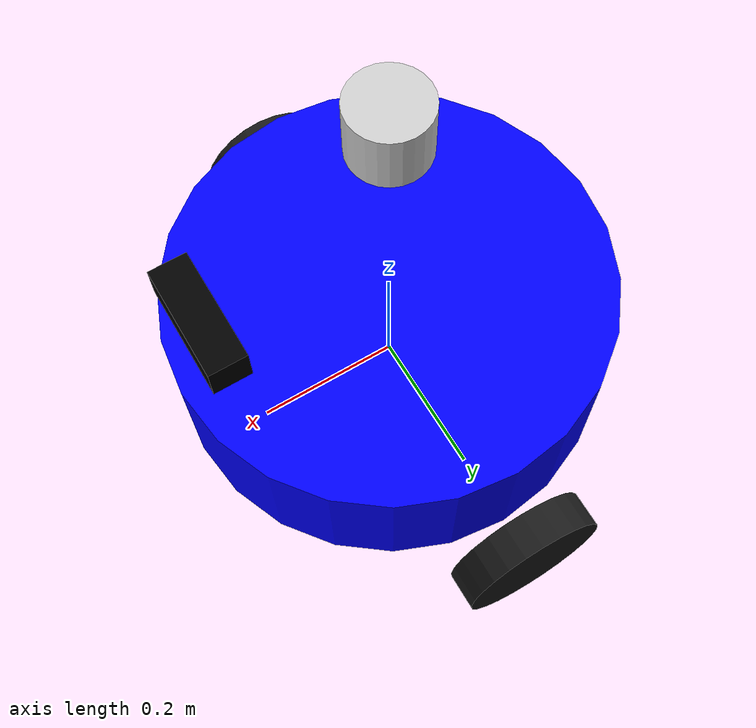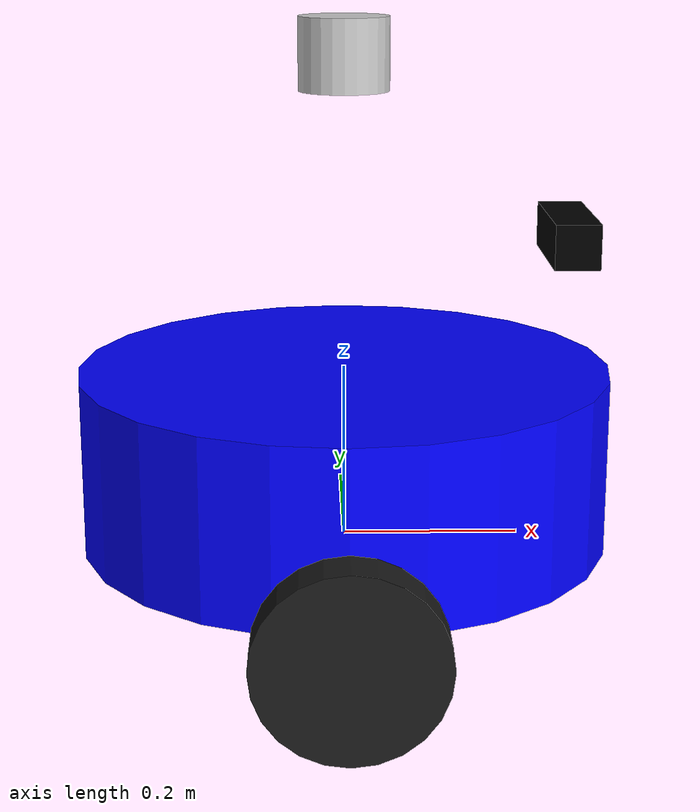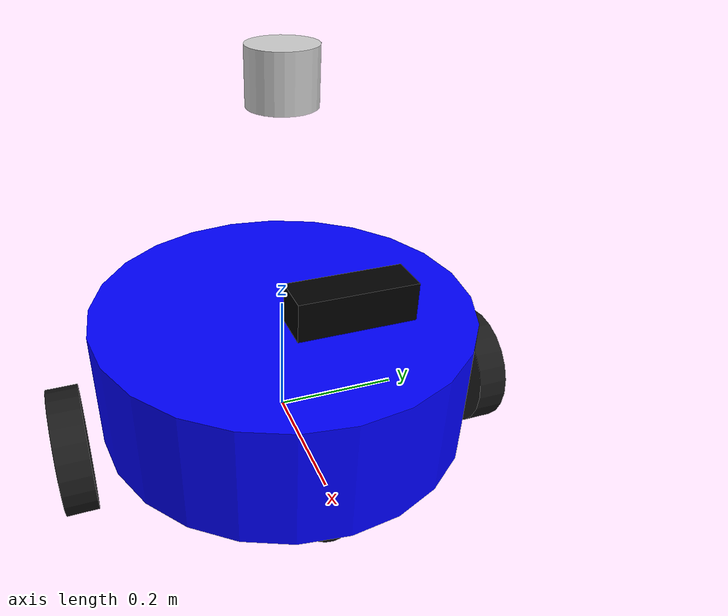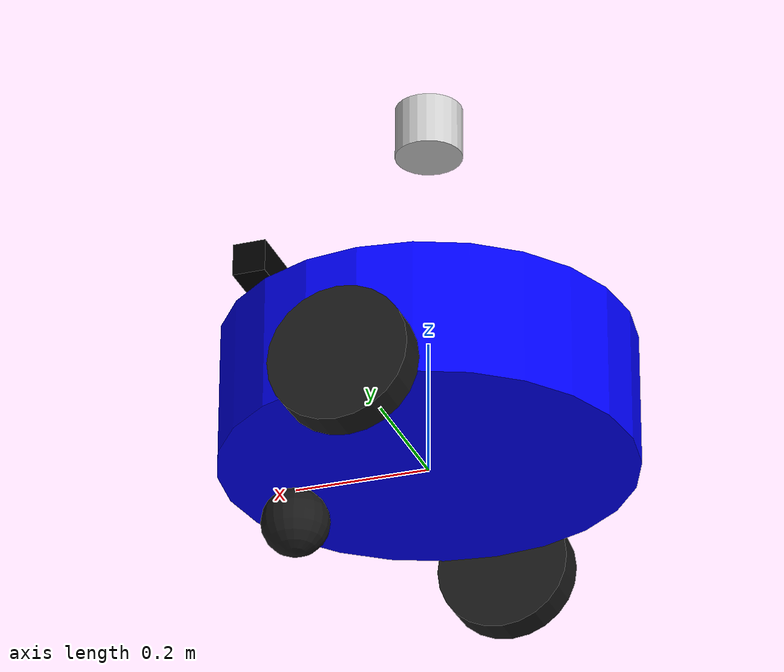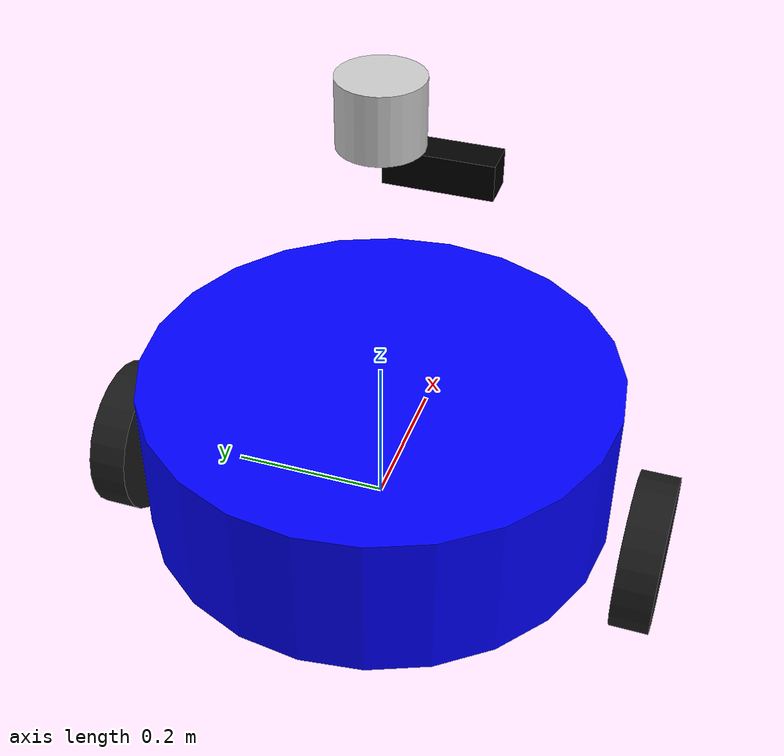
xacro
<?xml version="1.0"?>
<robot name="advanced_robot" xmlns:xacro="http://ros.org/wiki/xacro">

  <!-- Base Footprint -->
  <link name="base_footprint"/>

  <joint name="base_joint" type="fixed">
    <parent link="base_footprint"/>
    <child link="base_link"/>
    <origin xyz="0 0 0.1" rpy="0 0 0"/>
  </joint>

  <!-- Base Link -->
  <link name="base_link">
    <visual>
      <geometry>
        <cylinder radius="0.3" length="0.2"/>
      </geometry>
      <material name="blue">
        <color rgba="0 0 1 1"/>
      </material>
    </visual>
    <collision>
      <geometry>
        <cylinder radius="0.3" length="0.2"/>
      </geometry>
    </collision>
    <inertial>
      <origin xyz="0.1 0 0" rpy="0 0 0"/>
      <mass value="10.0"/>
      <inertia ixx="0.1" ixy="0" ixz="0" iyy="0.1" iyz="0" izz="0.1"/>
    </inertial>
  </link>

  <!-- Left Wheel -->
  <link name="left_wheel">
    <visual>
      <geometry>
        <cylinder radius="0.1" length="0.05"/>
      </geometry>
      <material name="black">
        <color rgba="0.1 0.1 0.1 1"/>
      </material>
    </visual>
    <collision>
      <geometry>
        <cylinder radius="0.1" length="0.05"/>
      </geometry>
    </collision>
    <inertial>
      <mass value="1.0"/>
      <inertia ixx="0.01" ixy="0" ixz="0" iyy="0.01" iyz="0" izz="0.01"/>
    </inertial>
  </link>

  <joint name="left_wheel_joint" type="continuous">
    <parent link="base_link"/>
    <child link="left_wheel"/>
    <origin xyz="0 0.35 -0.1" rpy="-1.570796 0 0"/>
    <axis xyz="0 0 1"/>
  </joint>

  <!-- Right Wheel -->
  <link name="right_wheel">
    <visual>
      <geometry>
        <cylinder radius="0.1" length="0.05"/>
      </geometry>
      <material name="black">
        <color rgba="0.1 0.1 0.1 1"/>
      </material>
    </visual>
    <collision>
      <geometry>
        <cylinder radius="0.1" length="0.05"/>
      </geometry>
    </collision>
    <inertial>
      <mass value="1.0"/>
      <inertia ixx="0.01" ixy="0" ixz="0" iyy="0.01" iyz="0" izz="0.01"/>
    </inertial>
  </link>

  <joint name="right_wheel_joint" type="continuous">
    <parent link="base_link"/>
    <child link="right_wheel"/>
    <origin xyz="0 -0.35 -0.1" rpy="-1.570796 0 0"/>
    <axis xyz="0 0 1"/>
  </joint>

  <!-- Front Caster Wheel -->
  <link name="caster_wheel">
    <visual>
      <geometry>
        <sphere radius="0.05"/>
      </geometry>
      <material name="black">
        <color rgba="0.1 0.1 0.1 1"/>
      </material>
    </visual>
    <collision>
      <geometry>
        <sphere radius="0.05"/>
      </geometry>
    </collision>
    <inertial>
      <mass value="0.5"/>
      <inertia ixx="0.001" ixy="0" ixz="0" iyy="0.001" iyz="0" izz="0.001"/>
    </inertial>
  </link>

  <joint name="caster_wheel_joint" type="fixed">
    <parent link="base_link"/>
    <child link="caster_wheel"/>
    <origin xyz="0.2 0 -0.15" rpy="0 0 0"/>
  </joint>

  <gazebo reference="caster_wheel">
    <mu1>0.0</mu1>
    <mu2>0.0</mu2>
  </gazebo>

  <!-- IMU -->
  <link name="imu_link"/>
  <joint name="imu_joint" type="fixed">
    <parent link="base_link"/>
    <child link="imu_link"/>
    <origin xyz="0 0 0" rpy="0 0 0"/>
  </joint>

  <!-- 3D LiDAR (e.g. VLP-16) -->
  <link name="laser_link">
    <visual>
      <geometry>
        <cylinder radius="0.05" length="0.08"/>
      </geometry>
      <material name="white">
        <color rgba="0.8 0.8 0.8 1"/>
      </material>
    </visual>
    <collision>
      <geometry>
        <cylinder radius="0.05" length="0.08"/>
      </geometry>
    </collision>
    <inertial>
      <mass value="0.5"/>
      <inertia ixx="0.001" ixy="0" ixz="0" iyy="0.001" iyz="0" izz="0.001"/>
    </inertial>
  </link>

  <joint name="laser_joint" type="fixed">
    <parent link="base_link"/>
    <child link="laser_link"/>
    <origin xyz="0 0 0.45" rpy="0 0 0"/>
  </joint>

  <!-- RGB-D Camera Base Link -->
  <link name="camera_link">
    <visual>
      <geometry>
        <box size="0.05 0.15 0.05"/>
      </geometry>
      <material name="black">
        <color rgba="0 0 0 1"/>
      </material>
    </visual>
    <collision>
      <geometry>
        <box size="0.05 0.15 0.05"/>
      </geometry>
    </collision>
    <inertial>
      <mass value="0.2"/>
      <inertia ixx="0.001" ixy="0" ixz="0" iyy="0.001" iyz="0" izz="0.001"/>
    </inertial>
  </link>

  <joint name="camera_joint" type="fixed">
    <parent link="base_link"/>
    <child link="camera_link"/>
    <!-- Positioned slightly forward and up -->
    <origin xyz="0.25 0 0.25" rpy="0 0 0"/>
  </joint>

  <!-- Camera Optical Link -->
  <link name="camera_link_optical"/>
  <joint name="camera_optical_joint" type="fixed">
    <parent link="camera_link"/>
    <child link="camera_link_optical"/>
    <origin xyz="0 0 0" rpy="-1.570796 0 -1.570796"/>
  </joint>

  <!-- Plugins -->

  <!-- Odometry / Diff Drive -->
  <gazebo>
    <plugin name="diff_drive_controller" filename="libgazebo_ros_diff_drive.so">
      <update_rate>50</update_rate>
      <left_joint>left_wheel_joint</left_joint>
      <right_joint>right_wheel_joint</right_joint>
      <wheel_separation>0.7</wheel_separation>
      <wheel_diameter>0.2</wheel_diameter>
      <max_wheel_torque>500</max_wheel_torque>
      <max_wheel_acceleration>1.0</max_wheel_acceleration>
      <command_topic>cmd_vel</command_topic>
      <publish_odom>true</publish_odom>
      <publish_odom_tf>true</publish_odom_tf>
      <publish_wheel_tf>false</publish_wheel_tf>
      <odometry_topic>odom</odometry_topic>
      <odometry_frame>odom</odometry_frame>
      <robot_base_frame>base_footprint</robot_base_frame>
    </plugin>
  </gazebo>

  <!-- IMU Plugin -->
  <gazebo reference="imu_link">
    <sensor name="imu_sensor" type="imu">
      <plugin filename="libgazebo_ros_imu_sensor.so" name="imu_plugin">
        <ros>
          <remapping>~/out:=imu</remapping>
        </ros>
        <initial_orientation_as_reference>false</initial_orientation_as_reference>
        <frame_name>imu_link</frame_name>
      </plugin>
      <always_on>true</always_on>
      <update_rate>100</update_rate>
      <visualize>true</visualize>
    </sensor>
  </gazebo>

  <!-- 3D LiDAR Plugin (16-channel) -->
  <gazebo reference="laser_link">
    <sensor type="ray" name="laser_3d">
      <pose>0 0 0 0 0 0</pose>
      <visualize>false</visualize>
      <update_rate>10</update_rate>
      <ray>
        <scan>
          <horizontal>
            <samples>360</samples>
            <resolution>1</resolution>
            <min_angle>-3.14159</min_angle>
            <max_angle>3.14159</max_angle>
          </horizontal>
          <vertical>
            <samples>16</samples>
            <resolution>1</resolution>
            <min_angle>-0.261799</min_angle> <!-- -15 degrees -->
            <max_angle>0.261799</max_angle>  <!-- 15 degrees -->
          </vertical>
        </scan>
        <range>
          <min>0.3</min>
          <max>100.0</max>
          <resolution>0.015</resolution>
        </range>
        <noise>
          <type>gaussian</type>
          <mean>0.0</mean>
          <stddev>0.01</stddev>
        </noise>
      </ray>
      <!-- Use ray sensor plugin and configure to output PointCloud2 -->
      <plugin name="gazebo_ros_laser_3d" filename="libgazebo_ros_ray_sensor.so">
        <ros>
          <remapping>~/out:=scan_3d</remapping>
        </ros>
        <output_type>sensor_msgs/PointCloud2</output_type>
        <frame_name>laser_link</frame_name>
      </plugin>
    </sensor>
  </gazebo>

  <!-- RGB-D Camera Plugin -->
  <gazebo reference="camera_link_optical">
    <sensor type="depth" name="rgbd_camera">
      <update_rate>15.0</update_rate>
      <camera name="camera">
        <horizontal_fov>1.5</horizontal_fov>
        <image>
          <width>640</width>
          <height>480</height>
          <format>R8G8B8</format>
        </image>
        <clip>
          <near>0.1</near>
          <far>100.0</far>
        </clip>
        <noise>
          <type>gaussian</type>
          <mean>0.0</mean>
          <stddev>0.007</stddev>
        </noise>
      </camera>
      <plugin name="camera_controller" filename="libgazebo_ros_camera.so">
        <ros>
          <namespace>camera</namespace>
          <remapping>image_raw:=rgb/image_raw</remapping>
          <remapping>depth/image_raw:=depth/image_raw</remapping>
          <remapping>camera_info:=rgb/camera_info</remapping>
        </ros>
        <camera_name>camera</camera_name>
        <frame_name>camera_link_optical</frame_name>
        <min_depth>0.1</min_depth>
        <max_depth>100.0</max_depth>
      </plugin>
    </sensor>
  </gazebo>
</robot>
